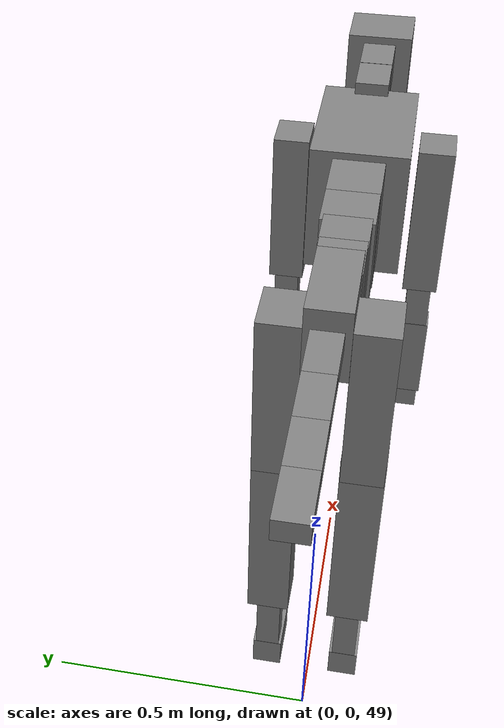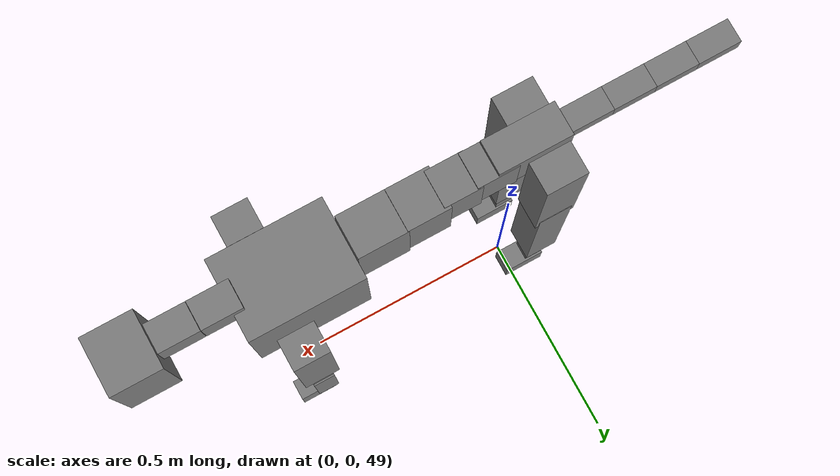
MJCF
<mujoco model="dog">

    <default>
        <joint armature="0.02" stiffness="1" damping="0.2" limited="true"/>
        <geom condim="3" friction="1 0.05 0.05" margin="0.01"/>
        <motor ctrllimited="true" ctrlrange="-1.0 1.0" forcelimited="true" gear="50"/>
    </default>

    <compiler inertiafromgeom="true" angle="radian"/>

    <option timestep="0.016" iterations="50" tolerance="1e-10" solver="Newton" jacobian="dense" cone="pyramidal"/>

    <size nconmax="20000" njmax="60000" nstack="5000000"/>
    <visual>
        <map force="0.1" zfar="30"/>
        <rgba haze="0.15 0.25 0.35 1"/>
        <quality shadowsize="2048"/>
        <global offwidth="800" offheight="800"/>
    </visual>

    <asset>
        <texture type="skybox" builtin="gradient" rgb1="0.3 0.5 0.7" rgb2="0 0 0" width="512" height="512"/>
        <texture name="texplane" type="2d" builtin="checker" rgb1=".2 .3 .4" rgb2=".1 0.15 0.2" width="512" height="512"
                 mark="cross" markrgb=".8 .8 .8"/>
        <texture name="texgeom" type="cube" builtin="flat" mark="cross" width="127" height="1278" rgb1="0.8 0.6 0.4"
                 rgb2="0.8 0.6 0.4" markrgb="1 1 1" random="0.01"/>

        <material name="matplane" reflectance="0.3" texture="texplane" texrepeat="1 1" texuniform="true"/>
        <material name="matgeom" texture="texgeom" texuniform="true" rgba="0.8 0.6 .4 1"/>
    </asset>

    <worldbody>
        <geom name="floor" pos="0 0 0" size="0 0 .25" type="plane" material="matplane" condim="3"/>

        <light directional="false" diffuse=".2 .2 .2" specular="0 0 0" pos="0 0 5" dir="0 0 -1" castshadow="false"/>
        <light mode="targetbodycom" target="torso" directional="false" diffuse=".8 .8 .8" specular="0.3 0.3 0.3"
               pos="0 0 4.0" dir="0 0 -1"/>

        <body name="root" pos="0 0 50">
            <freejoint name="root_1"/>
            <geom type="box" pos="0 0 -0.02" size="0.0774  0.0358  0.063" density="2030"/>

            <body name="spine1" pos="0.054 0 0">
                <joint name="spine1_y" axis="0 1 0" range="0 0.7" limited="true"/>
                <geom type="box" pos="0.02375 0 -0.03" size="0.04375  0.0375  0.05985" density="2030"/>

                <body name="spine2" pos="0.0612 0 0">
                    <joint name="spine2_y" axis="0 1 0" range="-0.15 0.15" limited="true"/>
                    <geom type="box" pos="0.03555  0  -0.04" size="0.04055  0.039  0.06615" density="2030"/>

                    <body name="spine3" pos="0.0730 0 0">
                        <joint name="spine3_y" axis="0 1 0" range="-0.15 0.15" limited="true"/>
                        <geom type="box" pos="0.03555  0  -0.057" size="0.04555  0.0445  0.081" density="2030"/>

                        <body name="spine4" pos="0.0780 0 0">
                            <joint name="spine4_y" axis="0 1 0" range="-0.15 0.15" limited="true"/>
                            <geom type="box" pos="0.05265  0  -0.07" size="0.05265  0.045  0.09135" density="2030"/>

                            <body name="torso" pos="0.1082 0 0">
                                <joint name="torso_y" axis="0 1 0" range="-0.15 0.15" limited="true"/>
                                <geom type="box" pos="0.11925  0  -0.085" size="0.11925  0.085  0.11745"
                                      density="2030"/>

                                <body name="neck1" pos="0.2160  0   0.0180">
                                    <joint name="neck1_y" axis="0 1 0" range="-1.2  -1" limited="true"/>
                                    <geom type="box" pos="0.0423  0  0" size="0.0423  0.03  0.036" density="2325"/>

                                    <body name="neck2" pos="0.0853  0  0">
                                        <joint name="neck2_y" axis="0 1 0" range="0.1  0" limited="true"/>
                                        <geom type="box" pos="0.0423  0  0" size="0.0423  0.03  0.036" density="2325"/>

                                        <body name="head" pos="0.0853  0  0">
                                            <joint name="head_y" axis="0 1 0" range="-0.3  -0.2" limited="true"/>
                                            <geom type="box" pos="0.0531  0  -0.055" size="0.0531  0.06  0.1044"
                                                  density="4030"/>

                                        </body>
                                    </body>
                                </body>

                                <body name="front_shoulder" pos="0.156  0   -0.0480">
                                    <joint name="front_shoulder_y" axis="0 1 0" range="-1 1.5" limited="true"/>
                                    <geom type="box" pos="0 0.13 -0.1222" size="0.0378  0.0323  0.1488" density="1158"/>
                                    <geom type="box" pos="0 -0.13 -0.1222" size="0.0378  0.0323  0.1488"
                                          density="1158"/>

                                    <body name="front_elbow" pos="0  0  -0.2443">
                                        <joint name="front_elbow_y" axis="0 1 0" range="-2 0" limited="true"/>
                                        <geom type="box" pos="0 0.13 -0.0670" size="0.0222  0.0227  0.0670"
                                              density="1081"/>
                                        <geom type="box" pos="0 -0.13 -0.0670" size="0.0222  0.0227  0.0670"
                                              density="1081"/>

                                        <body name="front_wrist" pos="0  0  -0.1340">
                                            <joint name="front_wrist_y" axis="0 1 0" range="-0.2 0" limited="true"/>
                                            <geom type="box" pos="0 0.13 -0.0730" size="0.0236  0.0262  0.0862"
                                                  density="1664"/>
                                            <geom type="box" pos="0 -0.13 -0.0730" size="0.0236  0.0262  0.0862"
                                                  density="1664"/>

                                            <body name="front_finger_end" pos="0  0  -0.1461">
                                                <joint name="front_finger_y" axis="0 1 0" range="-0.4 1"
                                                       limited="true"/>
                                                <geom type="box" pos="0.0218  0.13  -0.0215"
                                                      size="0.0399  0.0218  0.0365" density="1515"/>
                                                <geom type="box" pos="0.0218  -0.13  -0.0215"
                                                      size="0.0399  0.0218  0.0365" density="1515"/>

                                            </body>

                                        </body>
                                    </body>
                                </body>

                            </body>
                        </body>
                    </body>
                </body>
            </body>

            <body name="back_hip" pos="-0.03 0 -0.018">
                <joint name="back_hip_y" axis="0 1 0" range="-1.5 0.3" limited="true"/>
                <geom type="box" pos="0 0.07 -0.1246" size="0.0439  0.0345  0.1474" density="1154"/>
                <geom type="box" pos="0 -0.07 -0.1246" size="0.0439  0.0345  0.1474" density="1154"/>

                <body name="back_knee" pos="0  0  -0.2492">
                    <joint name="back_knee_y" axis="0 1 0" range="0 2.8" limited="true"/>
                    <geom type="box" pos="0 0.07 -0.1745" size="0.0362  0.0357  0.1900" density="1227"/>
                    <geom type="box" pos="0 -0.07 -0.1745" size="0.0362  0.0357  0.1900" density="1227"/>

                    <body name="back_ankle" pos="0  0  -0.3490">
                        <joint name="back_ankle_y" axis="0 1 0" range="-2.2 0" limited="true"/>
                        <geom type="box" pos="0 0.07 -0.0770" size="0.0206  0.0206  0.0883" density="1284"/>
                        <geom type="box" pos="0 -0.07 -0.0770" size="0.0206  0.0206  0.0883" density="1284"/>

                        <body name="back_toe_end" pos="0  0  -0.1541">
                            <joint name="back_toe_y" axis="0 1 0" range="-0.4 1" limited="true"/>
                            <geom type="box" pos="0.0252  0.07  -0.0136" size="0.0462  0.0252  0.0286" density="1515"/>
                            <geom type="box" pos="0.0252  -0.07  -0.0136" size="0.0462  0.0252  0.0286" density="1515"/>

                        </body>
                    </body>
                </body>
            </body>

            <body name="tail1" pos="-0.074 0 -0.006">
                <joint name="tail1_y" axis="0 1 0" range="-0.2 0.2" limited="true"/>
                <geom type="box" pos="-0.0536  0  0" size="0.045  0.025  0.0175" density="1587"/>

                <body name="tail2" pos="-0.09 0 0">
                    <joint name="tail2_y" axis="0 1 0" range="-0.2 0.2" limited="true"/>
                    <geom type="box" pos="-0.0536  0  0" size="0.045  0.025  0.0175" density="1587"/>

                    <body name="tail3" pos="-0.09 0 0">
                        <joint name="tail3_y" axis="0 1 0" range="-0.2 0.2" limited="true"/>
                        <geom type="box" pos="-0.0536  0  0" size="0.045  0.025  0.0175" density="1587"/>

                        <body name="tail4" pos="-0.09 0 0">
                            <joint name="tail4_y" axis="0 1 0" range="-0.2 0.2" limited="true"/>
                            <geom type="box" pos="-0.0536  0  0" size="0.045  0.025  0.0175" density="1587"/>

                        </body>
                    </body>
                </body>
            </body>
        </body>
    </worldbody>

    <actuator>
        <motor joint="spine1_y" forcerange="-150 150     "/>
        <motor joint="spine2_y" forcerange="-150 150     "/>
        <motor joint="spine3_y" forcerange="-150 150     "/>
        <motor joint="spine4_y" forcerange="-150 150     "/>
        <motor joint="torso_y" forcerange="-150 150     "/>
        <motor joint="neck1_y" forcerange="-100 100       "/>
        <motor joint="neck2_y" forcerange="-100 100       "/>
        <motor joint="head_y" forcerange="-150 150       "/>
        <motor joint="front_shoulder_y" forcerange="-143.43 171.95"/>
        <motor joint="front_elbow_y" forcerange="-132.54 132.23"/>
        <motor joint="front_wrist_y" forcerange="-115.68 93.91"/>
        <motor joint="front_finger_y" forcerange="-46.14 30.06"/>
        <motor joint="back_hip_y" forcerange="-358.11 301.25"/>
        <motor joint="back_knee_y" forcerange="-326.65 392.00"/>
        <motor joint="back_angle_y" forcerange="-83.52 146.78"/>
        <motor joint="back_toe_y" forcerange="-88.21 33.57"/>
        <motor joint="tail1_y" forcerange="-50 50     "/>
        <motor joint="tail2_y" forcerange="-50 50     "/>
        <motor joint="tail3_y" forcerange="-50 50     "/>
        <motor joint="tail4_y" forcerange="-50 50     "/>
    </actuator>
</mujoco>
